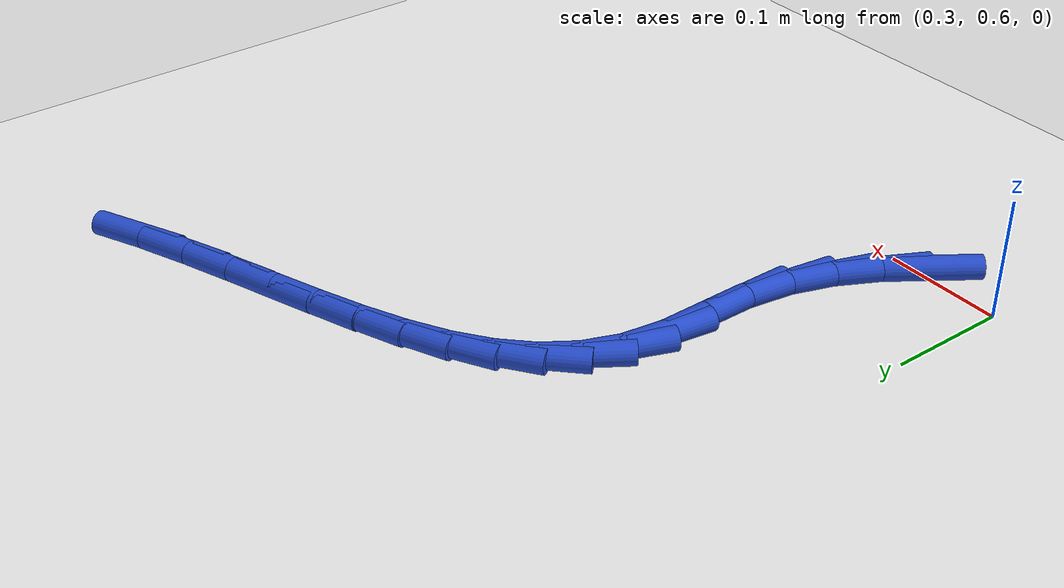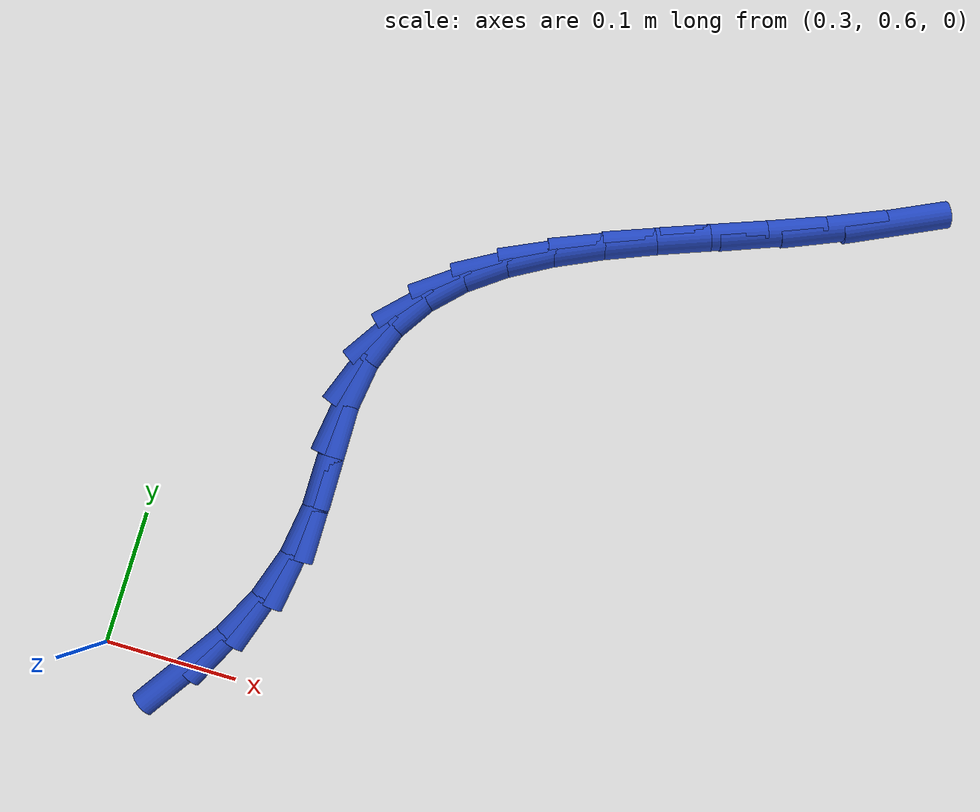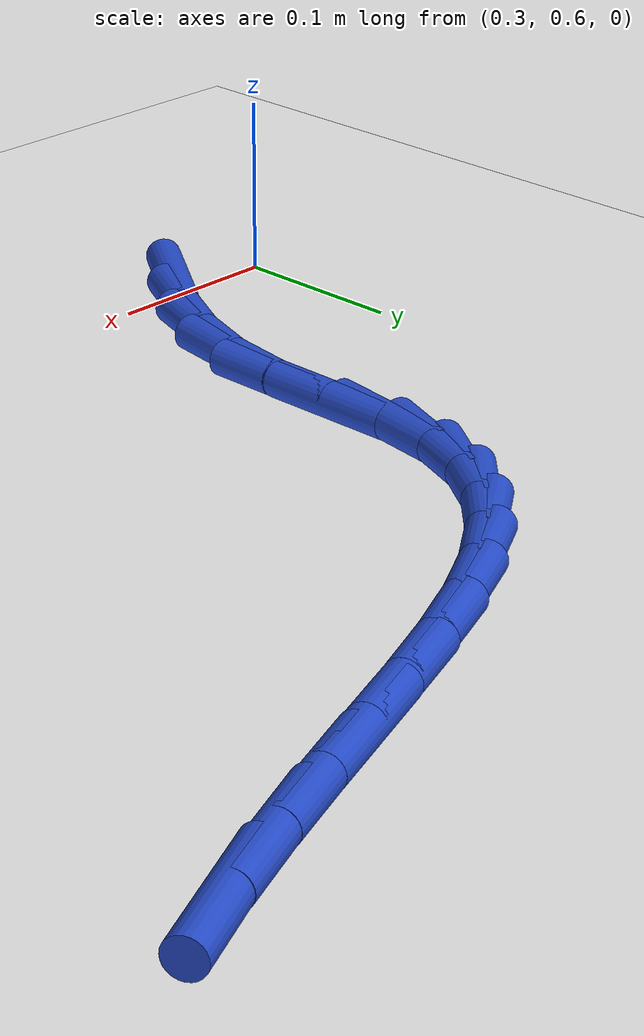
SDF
<sdf version="1.6">
 <world name="default">
  <model name="ground_plane">
   <static>1</static>
   <link name="link">
    <collision name="collision">
     <geometry><plane><normal>0 0 1</normal><size>100 100</size></plane></geometry>
     <surface><friction><ode><mu>100</mu><mu2>50</mu2></ode></friction></surface>
    </collision>
    <visual name="visual">
     <cast_shadows>0</cast_shadows>
     <geometry><plane><normal>0 0 1</normal><size>100 100</size></plane></geometry>
     <material>
      <script><uri>file://media/materials/scripts/gazebo.material</uri><name>Gazebo/WhiteGlow</name></script>
     </material>
    </visual>
   </link>
  </model>
  <model name="line">
   <link name="link_18">
    <pose>0.36390291501903776 0.5987357901282744 0.01 0 1.57 0.961747293952969</pose>
    <collision name="collision">
     <geometry><cylinder><radius>0.01</radius><length>0.08</length></cylinder></geometry>
    </collision>
    <visual name="visual">
     <material>
      <script><name>Gazebo/Blue</name><uri>file://media/materials/scripts/gazebo.material</uri></script>
     </material>
     <geometry><cylinder><radius>0.01</radius><length>0.08</length></cylinder></geometry>
    </visual>
   </link>
   <link name="link_19">
    <pose>0.3861141673053741 0.6305796831488322 0.01 0 1.57 1.090361104754436</pose>
    <collision name="collision">
     <geometry><cylinder><radius>0.01</radius><length>0.08</length></cylinder></geometry>
    </collision>
    <visual name="visual">
     <material>
      <script><name>Gazebo/Blue</name><uri>file://media/materials/scripts/gazebo.material</uri></script>
     </material>
     <geometry><cylinder><radius>0.01</radius><length>0.08</length></cylinder></geometry>
    </visual>
   </link>
   <link name="link_20">
    <pose>0.40368176323070426 0.6642880566947806 0.01 0 1.57 1.2450296853127885</pose>
    <collision name="collision">
     <geometry><cylinder><radius>0.01</radius><length>0.08</length></cylinder></geometry>
    </collision>
    <visual name="visual">
     <material>
      <script><name>Gazebo/Blue</name><uri>file://media/materials/scripts/gazebo.material</uri></script>
     </material>
     <geometry><cylinder><radius>0.01</radius><length>0.08</length></cylinder></geometry>
    </visual>
   </link>
   <link name="link_21">
    <pose>0.4158110424833407 0.7001945685870792 0.01 0 1.57 1.4185862764887112</pose>
    <collision name="collision">
     <geometry><cylinder><radius>0.01</radius><length>0.08</length></cylinder></geometry>
    </collision>
    <visual name="visual">
     <material>
      <script><name>Gazebo/Blue</name><uri>file://media/materials/scripts/gazebo.material</uri></script>
     </material>
     <geometry><cylinder><radius>0.01</radius><length>0.08</length></cylinder></geometry>
    </visual>
   </link>
   <link name="link_22">
    <pose>0.4217073447515963 0.738632876646687 0.01 0 1.57 1.5682580806572348</pose>
    <collision name="collision">
     <geometry><cylinder><radius>0.01</radius><length>0.08</length></cylinder></geometry>
    </collision>
    <visual name="visual">
     <material>
      <script><name>Gazebo/Blue</name><uri>file://media/materials/scripts/gazebo.material</uri></script>
     </material>
     <geometry><cylinder><radius>0.01</radius><length>0.08</length></cylinder></geometry>
    </visual>
   </link>
   <link name="link_23">
    <pose>0.4218103912208103 0.7792302979865614 0.01 0 1.57 -1.5638474936969518</pose>
    <collision name="collision">
     <geometry><cylinder><radius>0.01</radius><length>0.08</length></cylinder></geometry>
    </collision>
    <visual name="visual">
     <material>
      <script><name>Gazebo/Blue</name><uri>file://media/materials/scripts/gazebo.material</uri></script>
     </material>
     <geometry><cylinder><radius>0.01</radius><length>0.08</length></cylinder></geometry>
    </visual>
   </link>
   <link name="link_24">
    <pose>0.42153565345257815 0.8187669140376008 0.01 0 1.57 1.4255696961304651</pose>
    <collision name="collision">
     <geometry><cylinder><radius>0.01</radius><length>0.08</length></cylinder></geometry>
    </collision>
    <visual name="visual">
     <material>
      <script><name>Gazebo/Blue</name><uri>file://media/materials/scripts/gazebo.material</uri></script>
     </material>
     <geometry><cylinder><radius>0.01</radius><length>0.08</length></cylinder></geometry>
    </visual>
   </link>
   <link name="link_25">
    <pose>0.42666865754295463 0.8538628663581784 0.01 0 1.57 1.2064040408737093</pose>
    <collision name="collision">
     <geometry><cylinder><radius>0.01</radius><length>0.08</length></cylinder></geometry>
    </collision>
    <visual name="visual">
     <material>
      <script><name>Gazebo/Blue</name><uri>file://media/materials/scripts/gazebo.material</uri></script>
     </material>
     <geometry><cylinder><radius>0.01</radius><length>0.08</length></cylinder></geometry>
    </visual>
   </link>
   <link name="link_26">
    <pose>0.43822096429051716 0.8841500353936307 0.01 0 1.57 0.9837804922667585</pose>
    <collision name="collision">
     <geometry><cylinder><radius>0.01</radius><length>0.08</length></cylinder></geometry>
    </collision>
    <visual name="visual">
     <material>
      <script><name>Gazebo/Blue</name><uri>file://media/materials/scripts/gazebo.material</uri></script>
     </material>
     <geometry><cylinder><radius>0.01</radius><length>0.08</length></cylinder></geometry>
    </visual>
   </link>
   <link name="link_27">
    <pose>0.45559901200173475 0.9102729209789628 0.01 0 1.57 0.7852838173489628</pose>
    <collision name="collision">
     <geometry><cylinder><radius>0.01</radius><length>0.08</length></cylinder></geometry>
    </collision>
    <visual name="visual">
     <material>
      <script><name>Gazebo/Blue</name><uri>file://media/materials/scripts/gazebo.material</uri></script>
     </material>
     <geometry><cylinder><radius>0.01</radius><length>0.08</length></cylinder></geometry>
    </visual>
   </link>
   <link name="link_28">
    <pose>0.4782080401754692 0.9328767792377706 0.01 0 1.57 0.626761427421215</pose>
    <collision name="collision">
     <geometry><cylinder><radius>0.01</radius><length>0.08</length></cylinder></geometry>
    </collision>
    <visual name="visual">
     <material>
      <script><name>Gazebo/Blue</name><uri>file://media/materials/scripts/gazebo.material</uri></script>
     </material>
     <geometry><cylinder><radius>0.01</radius><length>0.08</length></cylinder></geometry>
    </visual>
   </link>
   <link name="link_29">
    <pose>0.5054532883105821 0.9526068662936499 0.01 0 1.57 0.5100262778672222</pose>
    <collision name="collision">
     <geometry><cylinder><radius>0.01</radius><length>0.08</length></cylinder></geometry>
    </collision>
    <visual name="visual">
     <material>
      <script><name>Gazebo/Blue</name><uri>file://media/materials/scripts/gazebo.material</uri></script>
     </material>
     <geometry><cylinder><radius>0.01</radius><length>0.08</length></cylinder></geometry>
    </visual>
   </link>
   <link name="link_30">
    <pose>0.5367399959059351 0.9701084382701959 0.01 0 1.57 0.4297345607355648</pose>
    <collision name="collision">
     <geometry><cylinder><radius>0.01</radius><length>0.08</length></cylinder></geometry>
    </collision>
    <visual name="visual">
     <material>
      <script><name>Gazebo/Blue</name><uri>file://media/materials/scripts/gazebo.material</uri></script>
     </material>
     <geometry><cylinder><radius>0.01</radius><length>0.08</length></cylinder></geometry>
    </visual>
   </link>
   <link name="link_31">
    <pose>0.5714734024603907 0.9860267512910053 0.01 0 1.57 0.3792711564800059</pose>
    <collision name="collision">
     <geometry><cylinder><radius>0.01</radius><length>0.08</length></cylinder></geometry>
    </collision>
    <visual name="visual">
     <material>
      <script><name>Gazebo/Blue</name><uri>file://media/materials/scripts/gazebo.material</uri></script>
     </material>
     <geometry><cylinder><radius>0.01</radius><length>0.08</length></cylinder></geometry>
    </visual>
   </link>
   <link name="link_32">
    <pose>0.60905874747281 1.0010070614796733 0.01 0 1.57 0.35318350402038323</pose>
    <collision name="collision">
     <geometry><cylinder><radius>0.01</radius><length>0.08</length></cylinder></geometry>
    </collision>
    <visual name="visual">
     <material>
      <script><name>Gazebo/Blue</name><uri>file://media/materials/scripts/gazebo.material</uri></script>
     </material>
     <geometry><cylinder><radius>0.01</radius><length>0.08</length></cylinder></geometry>
    </visual>
   </link>
   <link name="link_33">
    <pose>0.648901270442055 1.0156946249597967 0.01 0 1.57 0.3476505406244318</pose>
    <collision name="collision">
     <geometry><cylinder><radius>0.01</radius><length>0.08</length></cylinder></geometry>
    </collision>
    <visual name="visual">
     <material>
      <script><name>Gazebo/Blue</name><uri>file://media/materials/scripts/gazebo.material</uri></script>
     </material>
     <geometry><cylinder><radius>0.01</radius><length>0.08</length></cylinder></geometry>
    </visual>
   </link>
   <link name="link_34">
    <pose>0.6904062108669875 1.0307346978549699 0.01 0 1.57 0.36027549012289645</pose>
    <collision name="collision">
     <geometry><cylinder><radius>0.01</radius><length>0.08</length></cylinder></geometry>
    </collision>
    <visual name="visual">
     <material>
      <script><name>Gazebo/Blue</name><uri>file://media/materials/scripts/gazebo.material</uri></script>
     </material>
     <geometry><cylinder><radius>0.01</radius><length>0.08</length></cylinder></geometry>
    </visual>
   </link>
   <link name="link_35">
    <pose>0.7329788082464694 1.0467725362887899 0.01 0 1.57 0.3897376097522639</pose>
    <collision name="collision">
     <geometry><cylinder><radius>0.01</radius><length>0.08</length></cylinder></geometry>
    </collision>
    <visual name="visual">
     <material>
      <script><name>Gazebo/Blue</name><uri>file://media/materials/scripts/gazebo.material</uri></script>
     </material>
     <geometry><cylinder><radius>0.01</radius><length>0.08</length></cylinder></geometry>
    </visual>
   </link>
   <link name="link_36">
    <pose>0.7760243020793626 1.064453396384852 0.01 0 1.57 0.4354425065101532</pose>
    <collision name="collision">
     <geometry><cylinder><radius>0.01</radius><length>0.08</length></cylinder></geometry>
    </collision>
    <visual name="visual">
     <material>
      <script><name>Gazebo/Blue</name><uri>file://media/materials/scripts/gazebo.material</uri></script>
     </material>
     <geometry><cylinder><radius>0.01</radius><length>0.08</length></cylinder></geometry>
    </visual>
   </link>
  </model>
 </world>
</sdf>
